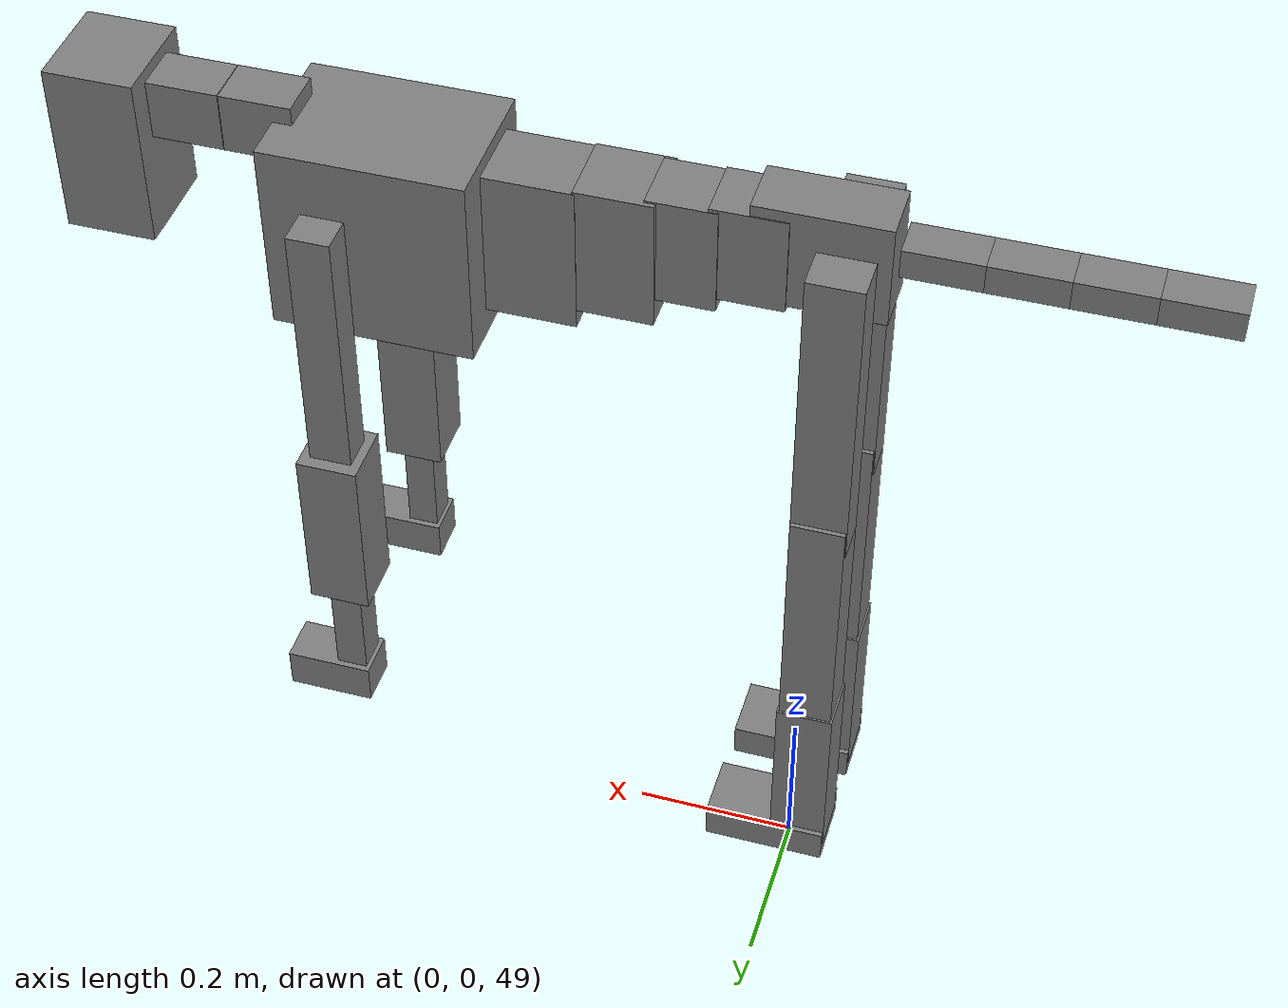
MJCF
<mujoco model="dog">

    <default>
        <joint armature="0.02" stiffness="1" damping="0.2" limited="true"/>
        <geom condim="3" friction="1 0.05 0.05" margin="0.01"/>
        <motor ctrllimited="true" ctrlrange="-1.0 1.0" forcelimited="true" gear="50"/>
    </default>

    <compiler inertiafromgeom="true" angle="radian"/>

    <option timestep="0.016" iterations="50" tolerance="1e-10" solver="Newton" jacobian="dense" cone="pyramidal"/>

    <size nconmax="20000" njmax="60000" nstack="5000000"/>
    <visual>
        <map force="0.1" zfar="30"/>
        <rgba haze="0.15 0.25 0.35 1"/>
        <quality shadowsize="2048"/>
        <global offwidth="800" offheight="800"/>
    </visual>

    <asset>
        <texture type="skybox" builtin="gradient" rgb1="0.3 0.5 0.7" rgb2="0 0 0" width="512" height="512"/>
        <texture name="texplane" type="2d" builtin="checker" rgb1=".2 .3 .4" rgb2=".1 0.15 0.2" width="512" height="512"
                 mark="cross" markrgb=".8 .8 .8"/>
        <texture name="texgeom" type="cube" builtin="flat" mark="cross" width="127" height="1278" rgb1="0.8 0.6 0.4"
                 rgb2="0.8 0.6 0.4" markrgb="1 1 1" random="0.01"/>

        <material name="matplane" reflectance="0.3" texture="texplane" texrepeat="1 1" texuniform="true"/>
        <material name="matgeom" texture="texgeom" texuniform="true" rgba="0.8 0.6 .4 1"/>
    </asset>

    <worldbody>
        <geom name="floor" pos="0 0 0" size="0 0 .25" type="plane" material="matplane" condim="3"/>

        <light directional="false" diffuse=".2 .2 .2" specular="0 0 0" pos="0 0 5" dir="0 0 -1" castshadow="false"/>
        <light mode="targetbodycom" target="torso" directional="false" diffuse=".8 .8 .8" specular="0.3 0.3 0.3"
               pos="0 0 4.0" dir="0 0 -1"/>

        <body name="root" pos="0 0 50">
            <freejoint name="root_1"/>
            <geom type="box" pos="0 0 -0.02" size="0.0774  0.0358  0.063" density="2030"/>

            <body name="spine1" pos="0.054 0 0">
                <joint name="spine1_y" axis="0 1 0" range="0 0.7" limited="true"/>
                <geom type="box" pos="0.02375 0 -0.03" size="0.04375  0.0375  0.05985" density="2030"/>

                <body name="spine2" pos="0.0612 0 0">
                    <joint name="spine2_y" axis="0 1 0" range="-0.15 0.15" limited="true"/>
                    <geom type="box" pos="0.03555  0  -0.04" size="0.04055  0.039  0.06615" density="2030"/>

                    <body name="spine3" pos="0.0730 0 0">
                        <joint name="spine3_y" axis="0 1 0" range="-0.15 0.15" limited="true"/>
                        <geom type="box" pos="0.03555  0  -0.057" size="0.04555  0.0445  0.081" density="2030"/>

                        <body name="spine4" pos="0.0780 0 0">
                            <joint name="spine4_y" axis="0 1 0" range="-0.15 0.15" limited="true"/>
                            <geom type="box" pos="0.05265  0  -0.07" size="0.05265  0.045  0.09135" density="2030"/>

                            <body name="torso" pos="0.1082 0 0">
                                <joint name="torso_y" axis="0 1 0" range="-0.15 0.15" limited="true"/>
                                <geom type="box" pos="0.11925  0  -0.085" size="0.11925  0.085  0.11745"
                                      density="2030"/>

                                <body name="neck1" pos="0.2160  0   0.0180">
                                    <joint name="neck1_y" axis="0 1 0" range="-1.2  -1" limited="true"/>
                                    <geom type="box" pos="0.0423  0  0" size="0.0423  0.03  0.036" density="2325"/>

                                    <body name="neck2" pos="0.0853  0  0">
                                        <joint name="neck2_y" axis="0 1 0" range="0.1  0" limited="true"/>
                                        <geom type="box" pos="0.0423  0  0" size="0.0423  0.03  0.036" density="2325"/>

                                        <body name="head" pos="0.0853  0  0">
                                            <joint name="head_y" axis="0 1 0" range="-0.3  -0.2" limited="true"/>
                                            <geom type="box" pos="0.0531  0  -0.055" size="0.0531  0.06  0.1044"
                                                  density="4030"/>

                                        </body>
                                    </body>
                                </body>

                                <body name="front_shoulder" pos="0.156  0   -0.0480">
                                    <joint name="front_shoulder_y" axis="0 1 0" range="-1 1.5" limited="true"/>
                                    <geom type="box" pos="0 0.13 -0.1463" size="0.0252  0.0215  0.1729" density="1158"/>
                                    <geom type="box" pos="0 -0.13 -0.1463" size="0.0252  0.0215  0.1729"
                                          density="1158"/>

                                    <body name="front_elbow" pos="0  0  -0.2925">
                                        <joint name="front_elbow_y" axis="0 1 0" range="-2 0" limited="true"/>
                                        <geom type="box" pos="0 0.13 -0.1075" size="0.0362  0.0370  0.1075"
                                              density="1081"/>
                                        <geom type="box" pos="0 -0.13 -0.1075" size="0.0362  0.0370  0.1075"
                                              density="1081"/>

                                        <body name="front_wrist" pos="0  0  -0.2149">
                                            <joint name="front_wrist_y" axis="0 1 0" range="-0.2 0" limited="true"/>
                                            <geom type="box" pos="0 0.13 -0.0720" size="0.0188  0.0209  0.0852"
                                                  density="1664"/>
                                            <geom type="box" pos="0 -0.13 -0.0720" size="0.0188  0.0209  0.0852"
                                                  density="1664"/>

                                            <body name="front_finger_end" pos="0  0  -0.1440">
                                                <joint name="front_finger_y" axis="0 1 0" range="-0.4 1"
                                                       limited="true"/>
                                                <geom type="box" pos="0.0284  0.13  -0.0101"
                                                      size="0.0520  0.0284  0.0251" density="1515"/>
                                                <geom type="box" pos="0.0284  -0.13  -0.0101"
                                                      size="0.0520  0.0284  0.0251" density="1515"/>

                                            </body>

                                        </body>
                                    </body>
                                </body>

                            </body>
                        </body>
                    </body>
                </body>
            </body>

            <body name="back_hip" pos="-0.03 0 -0.018">
                <joint name="back_hip_y" axis="0 1 0" range="-1.5 0.3" limited="true"/>
                <geom type="box" pos="0 0.07 -0.1699" size="0.0328  0.0257  0.1927" density="1154"/>
                <geom type="box" pos="0 -0.07 -0.1699" size="0.0328  0.0257  0.1927" density="1154"/>

                <body name="back_knee" pos="0  0  -0.3399">
                    <joint name="back_knee_y" axis="0 1 0" range="0 2.8" limited="true"/>
                    <geom type="box" pos="0 0.07 -0.1542" size="0.0318  0.0314  0.1698" density="1227"/>
                    <geom type="box" pos="0 -0.07 -0.1542" size="0.0318  0.0314  0.1698" density="1227"/>

                    <body name="back_ankle" pos="0  0  -0.3084">
                        <joint name="back_ankle_y" axis="0 1 0" range="-2.2 0" limited="true"/>
                        <geom type="box" pos="0 0.07 -0.1050" size="0.0341  0.0341  0.1163" density="1284"/>
                        <geom type="box" pos="0 -0.07 -0.1050" size="0.0341  0.0341  0.1163" density="1284"/>

                        <body name="back_toe_end" pos="0  0  -0.2101">
                            <joint name="back_toe_y" axis="0 1 0" range="-0.4 1" limited="true"/>
                            <geom type="box" pos="0.0406  0.07  -0.0059" size="0.0745  0.0406  0.0209" density="1515"/>
                            <geom type="box" pos="0.0406  -0.07  -0.0059" size="0.0745  0.0406  0.0209" density="1515"/>

                        </body>
                    </body>
                </body>
            </body>

            <body name="tail1" pos="-0.074 0 -0.006">
                <joint name="tail1_y" axis="0 1 0" range="-0.2 0.2" limited="true"/>
                <geom type="box" pos="-0.0536  0  0" size="0.045  0.025  0.0175" density="1587"/>

                <body name="tail2" pos="-0.09 0 0">
                    <joint name="tail2_y" axis="0 1 0" range="-0.2 0.2" limited="true"/>
                    <geom type="box" pos="-0.0536  0  0" size="0.045  0.025  0.0175" density="1587"/>

                    <body name="tail3" pos="-0.09 0 0">
                        <joint name="tail3_y" axis="0 1 0" range="-0.2 0.2" limited="true"/>
                        <geom type="box" pos="-0.0536  0  0" size="0.045  0.025  0.0175" density="1587"/>

                        <body name="tail4" pos="-0.09 0 0">
                            <joint name="tail4_y" axis="0 1 0" range="-0.2 0.2" limited="true"/>
                            <geom type="box" pos="-0.0536  0  0" size="0.045  0.025  0.0175" density="1587"/>

                        </body>
                    </body>
                </body>
            </body>
        </body>
    </worldbody>

    <actuator>
        <motor joint="spine1_y" forcerange="-150 150     "/>
        <motor joint="spine2_y" forcerange="-150 150     "/>
        <motor joint="spine3_y" forcerange="-150 150     "/>
        <motor joint="spine4_y" forcerange="-150 150     "/>
        <motor joint="torso_y" forcerange="-150 150     "/>
        <motor joint="neck1_y" forcerange="-100 100       "/>
        <motor joint="neck2_y" forcerange="-100 100       "/>
        <motor joint="head_y" forcerange="-150 150       "/>
        <motor joint="front_shoulder_y" forcerange="-115.80 127.63"/>
        <motor joint="front_elbow_y" forcerange="-190.98 178.44"/>
        <motor joint="front_wrist_y" forcerange="-103.00 64.55"/>
        <motor joint="front_finger_y" forcerange="-30.80 80.41"/>
        <motor joint="back_hip_y" forcerange="-319.60 223.45"/>
        <motor joint="back_knee_y" forcerange="-355.60 300.71"/>
        <motor joint="back_angle_y" forcerange="-205.71 239.39"/>
        <motor joint="back_toe_y" forcerange="-121.36 123.64"/>
        <motor joint="tail1_y" forcerange="-50 50     "/>
        <motor joint="tail2_y" forcerange="-50 50     "/>
        <motor joint="tail3_y" forcerange="-50 50     "/>
        <motor joint="tail4_y" forcerange="-50 50     "/>
    </actuator>
</mujoco>
